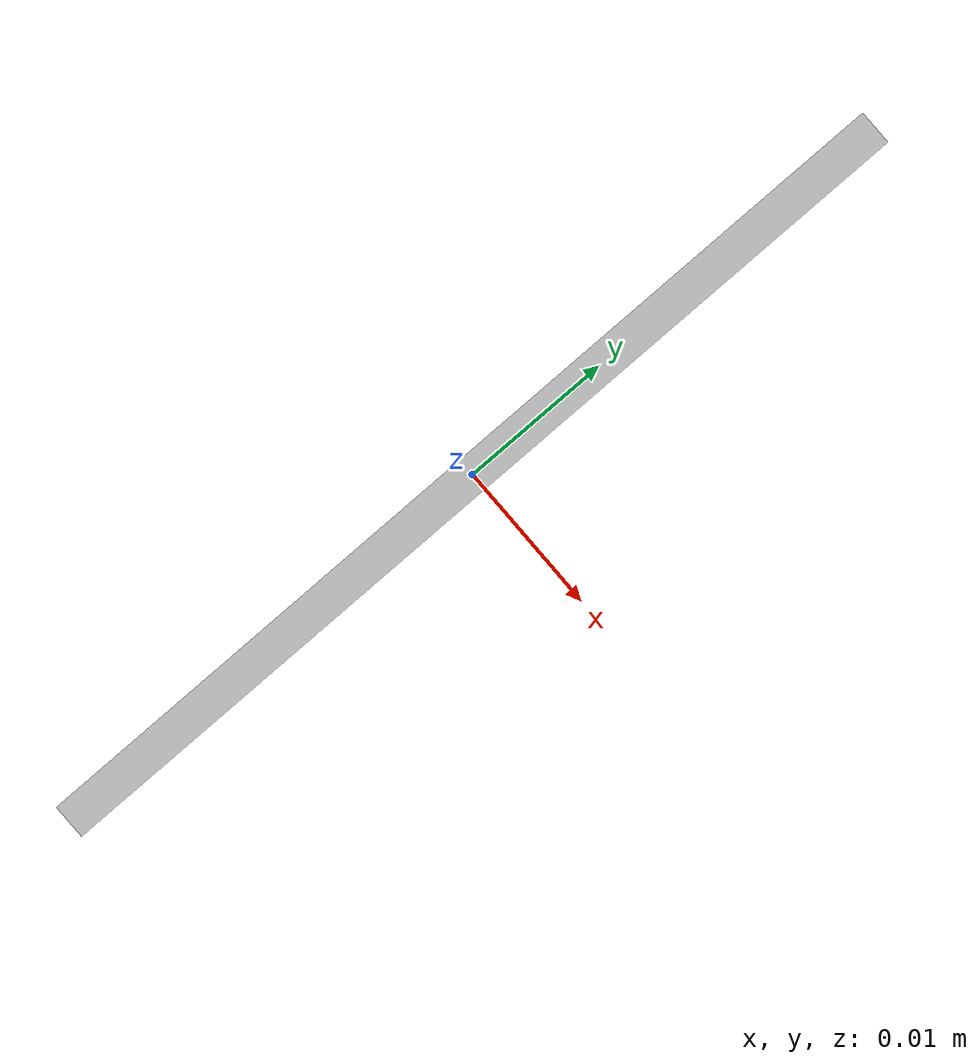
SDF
<?xml version="1.0" ?><sdf version="1.4">
  <model name="Marker20">
    <static>true</static>
    <link name="link">
      <visual name="visual">
        <geometry>
          <mesh>
            <uri>model://cannyone_simulation/models/marker20/meshes/Marker20.dae</uri>
          <scale>1.0 1.0 1.0</scale></mesh>
        </geometry>
      </visual>
    </link>
  </model>
</sdf>
